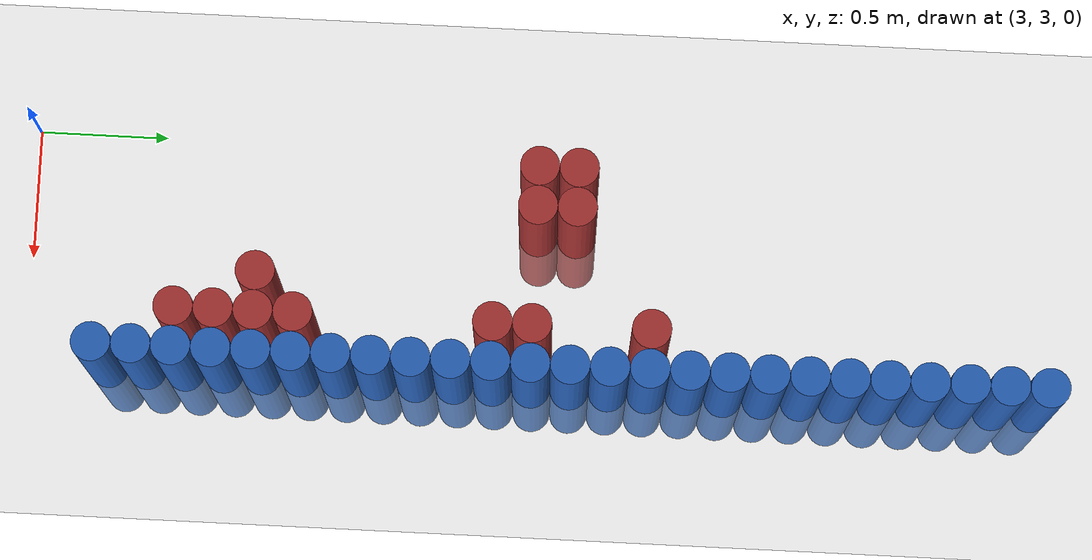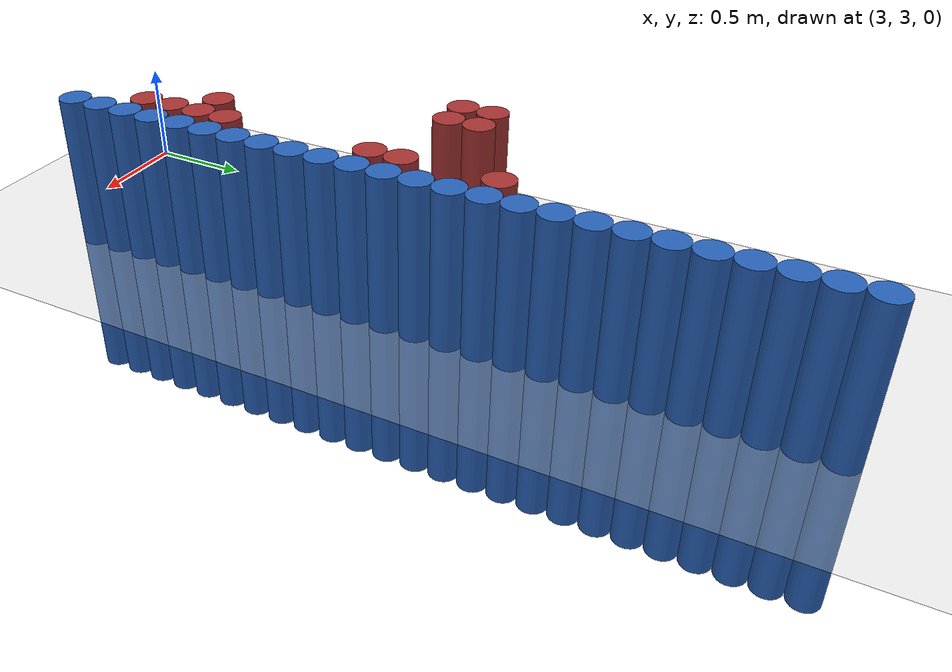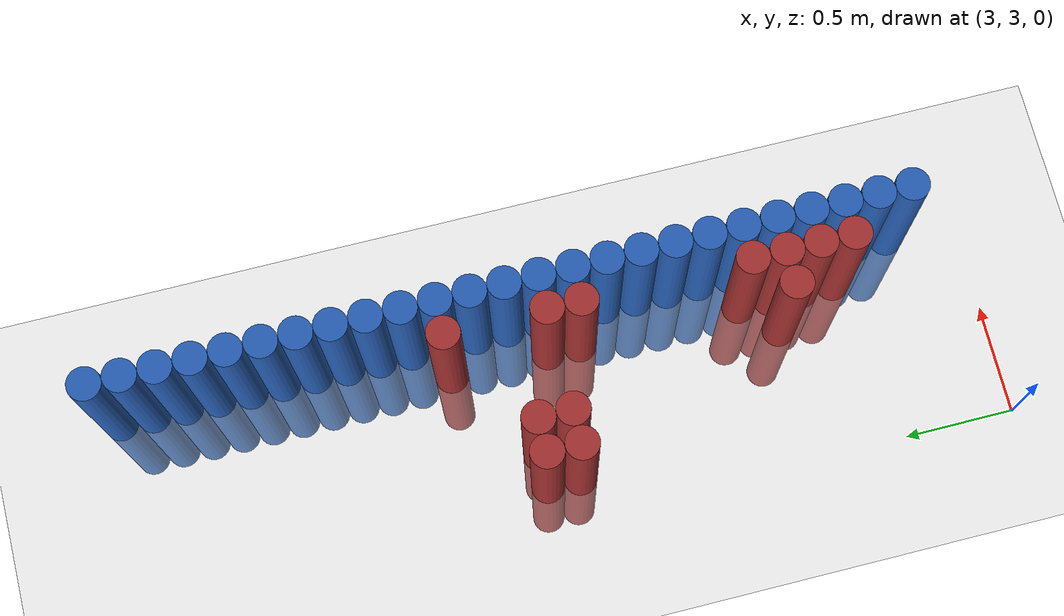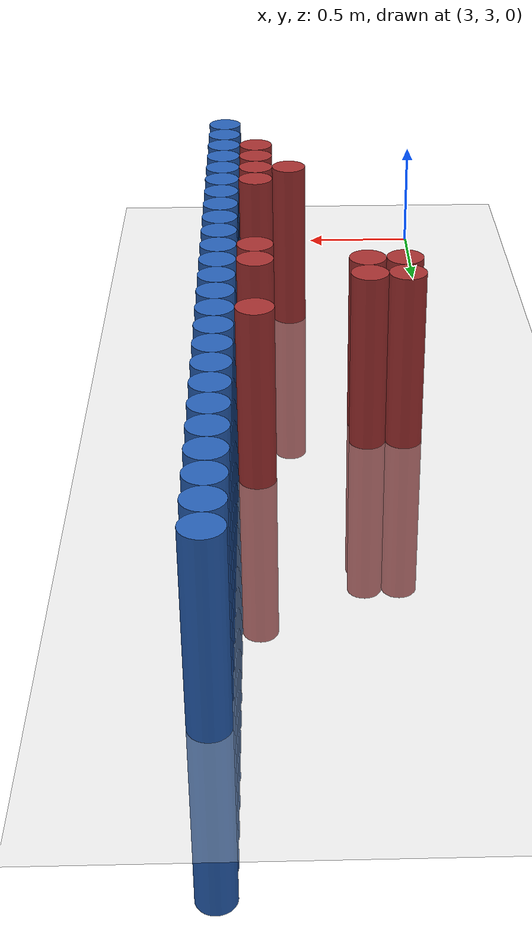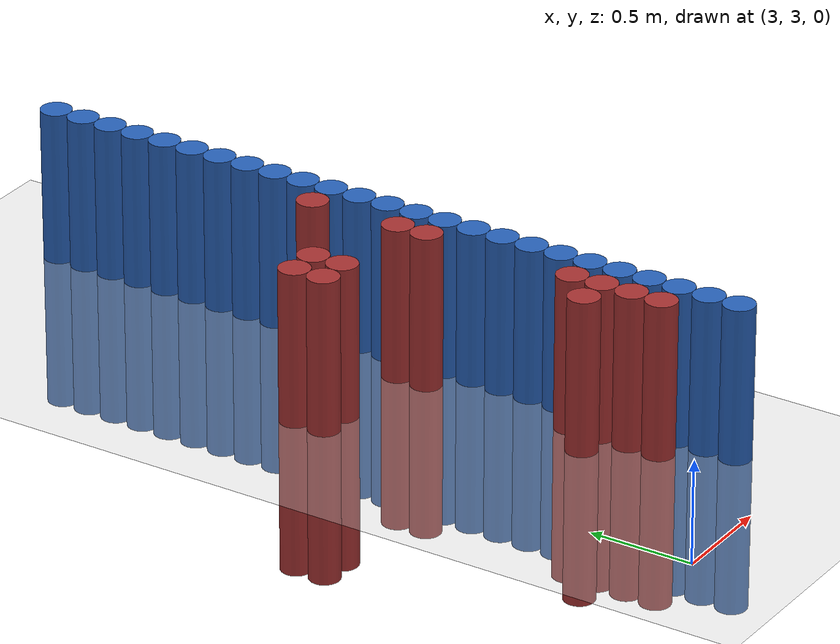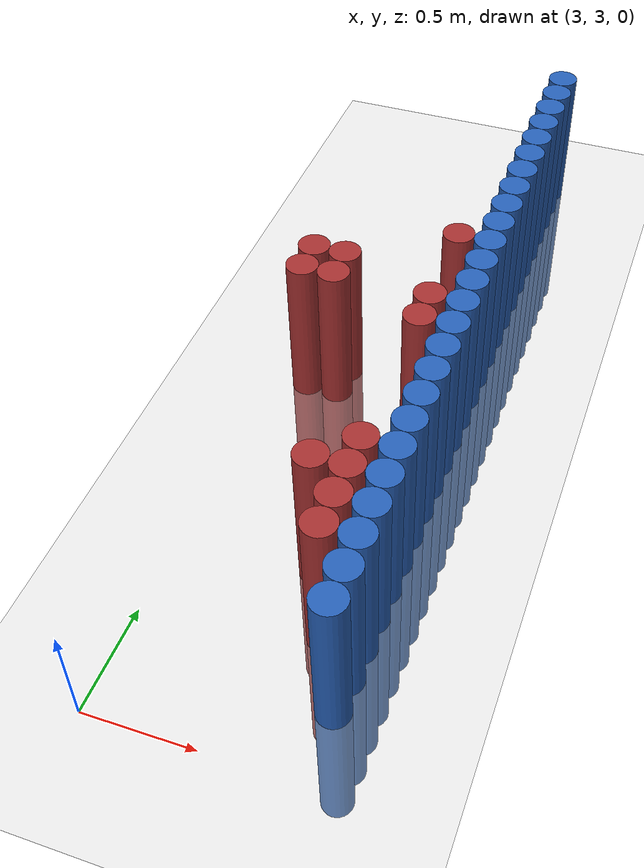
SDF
<sdf version="1.6">
 <world name="default">
  <model name="ground_plane">
   <static>1</static>
   <link name="link">
    <collision name="collision">
     <geometry><plane><normal>0 0 1</normal><size>100 100</size></plane></geometry>
     <surface><friction><ode><mu>100</mu><mu2>50</mu2></ode></friction></surface>
    </collision>
    <visual name="visual">
     <cast_shadows>0</cast_shadows>
     <geometry><plane><normal>0 0 1</normal><size>100 100</size></plane></geometry>
     <material>
      <script><uri>file://media/materials/scripts/gazebo.material</uri><name>Gazebo/Grey</name></script>
     </material>
    </visual>
   </link>
  </model>
  <model name="unit_cylinder_158">
   <static>1</static>
   <pose>3.925000 3.325000 0.000000 0.000000 0.000000 0.000000</pose>
   <link name="link">
    <inertial>
     <mass>1</mass>
     <inertia><ixx>0.145833</ixx><ixy>0</ixy><ixz>0</ixz><iyy>0.145833</iyy><iyz>0</iyz><izz>0.125</izz></inertia>
    </inertial>
    <collision name="collision">
     <geometry><cylinder><radius>0.075000</radius><length>1.5</length></cylinder></geometry>
    </collision>
    <visual name="visual">
     <geometry><cylinder><radius>0.075000</radius><length>1.5</length></cylinder></geometry>
     <material>
      <ambient>0.152000 0.379000 0.720000 1</ambient>
      <diffuse>0.152000 0.379000 0.720000 1</diffuse>
     </material>
     <material>
      <script><name>Gazebo/Grey</name><uri>file://media/materials/scripts/gazebo.material</uri></script>
     </material>
    </visual>
   </link>
  </model>
  <model name="unit_cylinder_160">
   <static>1</static>
   <pose>3.925000 3.475000 0.000000 0.000000 0.000000 0.000000</pose>
   <link name="link">
    <inertial>
     <mass>1</mass>
     <inertia><ixx>0.145833</ixx><ixy>0</ixy><ixz>0</ixz><iyy>0.145833</iyy><iyz>0</iyz><izz>0.125</izz></inertia>
    </inertial>
    <collision name="collision">
     <geometry><cylinder><radius>0.075000</radius><length>1.5</length></cylinder></geometry>
    </collision>
    <visual name="visual">
     <geometry><cylinder><radius>0.075000</radius><length>1.5</length></cylinder></geometry>
     <material>
      <ambient>0.152000 0.379000 0.720000 1</ambient>
      <diffuse>0.152000 0.379000 0.720000 1</diffuse>
     </material>
     <material>
      <script><name>Gazebo/Grey</name><uri>file://media/materials/scripts/gazebo.material</uri></script>
     </material>
    </visual>
   </link>
  </model>
  <model name="unit_cylinder_162">
   <static>1</static>
   <pose>3.925000 3.625000 0.000000 0.000000 0.000000 0.000000</pose>
   <link name="link">
    <inertial>
     <mass>1</mass>
     <inertia><ixx>0.145833</ixx><ixy>0</ixy><ixz>0</ixz><iyy>0.145833</iyy><iyz>0</iyz><izz>0.125</izz></inertia>
    </inertial>
    <collision name="collision">
     <geometry><cylinder><radius>0.075000</radius><length>1.5</length></cylinder></geometry>
    </collision>
    <visual name="visual">
     <geometry><cylinder><radius>0.075000</radius><length>1.5</length></cylinder></geometry>
     <material>
      <ambient>0.152000 0.379000 0.720000 1</ambient>
      <diffuse>0.152000 0.379000 0.720000 1</diffuse>
     </material>
     <material>
      <script><name>Gazebo/Grey</name><uri>file://media/materials/scripts/gazebo.material</uri></script>
     </material>
    </visual>
   </link>
  </model>
  <model name="unit_cylinder_164">
   <static>1</static>
   <pose>3.925000 3.775000 0.000000 0.000000 0.000000 0.000000</pose>
   <link name="link">
    <inertial>
     <mass>1</mass>
     <inertia><ixx>0.145833</ixx><ixy>0</ixy><ixz>0</ixz><iyy>0.145833</iyy><iyz>0</iyz><izz>0.125</izz></inertia>
    </inertial>
    <collision name="collision">
     <geometry><cylinder><radius>0.075000</radius><length>1.5</length></cylinder></geometry>
    </collision>
    <visual name="visual">
     <geometry><cylinder><radius>0.075000</radius><length>1.5</length></cylinder></geometry>
     <material>
      <ambient>0.152000 0.379000 0.720000 1</ambient>
      <diffuse>0.152000 0.379000 0.720000 1</diffuse>
     </material>
     <material>
      <script><name>Gazebo/Grey</name><uri>file://media/materials/scripts/gazebo.material</uri></script>
     </material>
    </visual>
   </link>
  </model>
  <model name="unit_cylinder_166">
   <static>1</static>
   <pose>3.925000 3.925000 0.000000 0.000000 0.000000 0.000000</pose>
   <link name="link">
    <inertial>
     <mass>1</mass>
     <inertia><ixx>0.145833</ixx><ixy>0</ixy><ixz>0</ixz><iyy>0.145833</iyy><iyz>0</iyz><izz>0.125</izz></inertia>
    </inertial>
    <collision name="collision">
     <geometry><cylinder><radius>0.075000</radius><length>1.5</length></cylinder></geometry>
    </collision>
    <visual name="visual">
     <geometry><cylinder><radius>0.075000</radius><length>1.5</length></cylinder></geometry>
     <material>
      <ambient>0.152000 0.379000 0.720000 1</ambient>
      <diffuse>0.152000 0.379000 0.720000 1</diffuse>
     </material>
     <material>
      <script><name>Gazebo/Grey</name><uri>file://media/materials/scripts/gazebo.material</uri></script>
     </material>
    </visual>
   </link>
  </model>
  <model name="unit_cylinder_168">
   <static>1</static>
   <pose>3.925000 4.075000 0.000000 0.000000 0.000000 0.000000</pose>
   <link name="link">
    <inertial>
     <mass>1</mass>
     <inertia><ixx>0.145833</ixx><ixy>0</ixy><ixz>0</ixz><iyy>0.145833</iyy><iyz>0</iyz><izz>0.125</izz></inertia>
    </inertial>
    <collision name="collision">
     <geometry><cylinder><radius>0.075000</radius><length>1.5</length></cylinder></geometry>
    </collision>
    <visual name="visual">
     <geometry><cylinder><radius>0.075000</radius><length>1.5</length></cylinder></geometry>
     <material>
      <ambient>0.152000 0.379000 0.720000 1</ambient>
      <diffuse>0.152000 0.379000 0.720000 1</diffuse>
     </material>
     <material>
      <script><name>Gazebo/Grey</name><uri>file://media/materials/scripts/gazebo.material</uri></script>
     </material>
    </visual>
   </link>
  </model>
  <model name="unit_cylinder_170">
   <static>1</static>
   <pose>3.925000 4.225000 0.000000 0.000000 0.000000 0.000000</pose>
   <link name="link">
    <inertial>
     <mass>1</mass>
     <inertia><ixx>0.145833</ixx><ixy>0</ixy><ixz>0</ixz><iyy>0.145833</iyy><iyz>0</iyz><izz>0.125</izz></inertia>
    </inertial>
    <collision name="collision">
     <geometry><cylinder><radius>0.075000</radius><length>1.5</length></cylinder></geometry>
    </collision>
    <visual name="visual">
     <geometry><cylinder><radius>0.075000</radius><length>1.5</length></cylinder></geometry>
     <material>
      <ambient>0.152000 0.379000 0.720000 1</ambient>
      <diffuse>0.152000 0.379000 0.720000 1</diffuse>
     </material>
     <material>
      <script><name>Gazebo/Grey</name><uri>file://media/materials/scripts/gazebo.material</uri></script>
     </material>
    </visual>
   </link>
  </model>
  <model name="unit_cylinder_172">
   <static>1</static>
   <pose>3.925000 4.375000 0.000000 0.000000 0.000000 0.000000</pose>
   <link name="link">
    <inertial>
     <mass>1</mass>
     <inertia><ixx>0.145833</ixx><ixy>0</ixy><ixz>0</ixz><iyy>0.145833</iyy><iyz>0</iyz><izz>0.125</izz></inertia>
    </inertial>
    <collision name="collision">
     <geometry><cylinder><radius>0.075000</radius><length>1.5</length></cylinder></geometry>
    </collision>
    <visual name="visual">
     <geometry><cylinder><radius>0.075000</radius><length>1.5</length></cylinder></geometry>
     <material>
      <ambient>0.152000 0.379000 0.720000 1</ambient>
      <diffuse>0.152000 0.379000 0.720000 1</diffuse>
     </material>
     <material>
      <script><name>Gazebo/Grey</name><uri>file://media/materials/scripts/gazebo.material</uri></script>
     </material>
    </visual>
   </link>
  </model>
  <model name="unit_cylinder_174">
   <static>1</static>
   <pose>3.925000 4.525000 0.000000 0.000000 0.000000 0.000000</pose>
   <link name="link">
    <inertial>
     <mass>1</mass>
     <inertia><ixx>0.145833</ixx><ixy>0</ixy><ixz>0</ixz><iyy>0.145833</iyy><iyz>0</iyz><izz>0.125</izz></inertia>
    </inertial>
    <collision name="collision">
     <geometry><cylinder><radius>0.075000</radius><length>1.5</length></cylinder></geometry>
    </collision>
    <visual name="visual">
     <geometry><cylinder><radius>0.075000</radius><length>1.5</length></cylinder></geometry>
     <material>
      <ambient>0.152000 0.379000 0.720000 1</ambient>
      <diffuse>0.152000 0.379000 0.720000 1</diffuse>
     </material>
     <material>
      <script><name>Gazebo/Grey</name><uri>file://media/materials/scripts/gazebo.material</uri></script>
     </material>
    </visual>
   </link>
  </model>
  <model name="unit_cylinder_176">
   <static>1</static>
   <pose>3.925000 4.675000 0.000000 0.000000 0.000000 0.000000</pose>
   <link name="link">
    <inertial>
     <mass>1</mass>
     <inertia><ixx>0.145833</ixx><ixy>0</ixy><ixz>0</ixz><iyy>0.145833</iyy><iyz>0</iyz><izz>0.125</izz></inertia>
    </inertial>
    <collision name="collision">
     <geometry><cylinder><radius>0.075000</radius><length>1.5</length></cylinder></geometry>
    </collision>
    <visual name="visual">
     <geometry><cylinder><radius>0.075000</radius><length>1.5</length></cylinder></geometry>
     <material>
      <ambient>0.152000 0.379000 0.720000 1</ambient>
      <diffuse>0.152000 0.379000 0.720000 1</diffuse>
     </material>
     <material>
      <script><name>Gazebo/Grey</name><uri>file://media/materials/scripts/gazebo.material</uri></script>
     </material>
    </visual>
   </link>
  </model>
  <model name="unit_cylinder_178">
   <static>1</static>
   <pose>3.925000 4.825000 0.000000 0.000000 0.000000 0.000000</pose>
   <link name="link">
    <inertial>
     <mass>1</mass>
     <inertia><ixx>0.145833</ixx><ixy>0</ixy><ixz>0</ixz><iyy>0.145833</iyy><iyz>0</iyz><izz>0.125</izz></inertia>
    </inertial>
    <collision name="collision">
     <geometry><cylinder><radius>0.075000</radius><length>1.5</length></cylinder></geometry>
    </collision>
    <visual name="visual">
     <geometry><cylinder><radius>0.075000</radius><length>1.5</length></cylinder></geometry>
     <material>
      <ambient>0.152000 0.379000 0.720000 1</ambient>
      <diffuse>0.152000 0.379000 0.720000 1</diffuse>
     </material>
     <material>
      <script><name>Gazebo/Grey</name><uri>file://media/materials/scripts/gazebo.material</uri></script>
     </material>
    </visual>
   </link>
  </model>
  <model name="unit_cylinder_180">
   <static>1</static>
   <pose>3.925000 4.975000 0.000000 0.000000 0.000000 0.000000</pose>
   <link name="link">
    <inertial>
     <mass>1</mass>
     <inertia><ixx>0.145833</ixx><ixy>0</ixy><ixz>0</ixz><iyy>0.145833</iyy><iyz>0</iyz><izz>0.125</izz></inertia>
    </inertial>
    <collision name="collision">
     <geometry><cylinder><radius>0.075000</radius><length>1.5</length></cylinder></geometry>
    </collision>
    <visual name="visual">
     <geometry><cylinder><radius>0.075000</radius><length>1.5</length></cylinder></geometry>
     <material>
      <ambient>0.152000 0.379000 0.720000 1</ambient>
      <diffuse>0.152000 0.379000 0.720000 1</diffuse>
     </material>
     <material>
      <script><name>Gazebo/Grey</name><uri>file://media/materials/scripts/gazebo.material</uri></script>
     </material>
    </visual>
   </link>
  </model>
  <model name="unit_cylinder_182">
   <static>1</static>
   <pose>3.925000 5.125000 0.000000 0.000000 0.000000 0.000000</pose>
   <link name="link">
    <inertial>
     <mass>1</mass>
     <inertia><ixx>0.145833</ixx><ixy>0</ixy><ixz>0</ixz><iyy>0.145833</iyy><iyz>0</iyz><izz>0.125</izz></inertia>
    </inertial>
    <collision name="collision">
     <geometry><cylinder><radius>0.075000</radius><length>1.5</length></cylinder></geometry>
    </collision>
    <visual name="visual">
     <geometry><cylinder><radius>0.075000</radius><length>1.5</length></cylinder></geometry>
     <material>
      <ambient>0.152000 0.379000 0.720000 1</ambient>
      <diffuse>0.152000 0.379000 0.720000 1</diffuse>
     </material>
     <material>
      <script><name>Gazebo/Grey</name><uri>file://media/materials/scripts/gazebo.material</uri></script>
     </material>
    </visual>
   </link>
  </model>
  <model name="unit_cylinder_184">
   <static>1</static>
   <pose>3.925000 5.275000 0.000000 0.000000 0.000000 0.000000</pose>
   <link name="link">
    <inertial>
     <mass>1</mass>
     <inertia><ixx>0.145833</ixx><ixy>0</ixy><ixz>0</ixz><iyy>0.145833</iyy><iyz>0</iyz><izz>0.125</izz></inertia>
    </inertial>
    <collision name="collision">
     <geometry><cylinder><radius>0.075000</radius><length>1.5</length></cylinder></geometry>
    </collision>
    <visual name="visual">
     <geometry><cylinder><radius>0.075000</radius><length>1.5</length></cylinder></geometry>
     <material>
      <ambient>0.152000 0.379000 0.720000 1</ambient>
      <diffuse>0.152000 0.379000 0.720000 1</diffuse>
     </material>
     <material>
      <script><name>Gazebo/Grey</name><uri>file://media/materials/scripts/gazebo.material</uri></script>
     </material>
    </visual>
   </link>
  </model>
  <model name="unit_cylinder_186">
   <static>1</static>
   <pose>3.925000 5.425000 0.000000 0.000000 0.000000 0.000000</pose>
   <link name="link">
    <inertial>
     <mass>1</mass>
     <inertia><ixx>0.145833</ixx><ixy>0</ixy><ixz>0</ixz><iyy>0.145833</iyy><iyz>0</iyz><izz>0.125</izz></inertia>
    </inertial>
    <collision name="collision">
     <geometry><cylinder><radius>0.075000</radius><length>1.5</length></cylinder></geometry>
    </collision>
    <visual name="visual">
     <geometry><cylinder><radius>0.075000</radius><length>1.5</length></cylinder></geometry>
     <material>
      <ambient>0.152000 0.379000 0.720000 1</ambient>
      <diffuse>0.152000 0.379000 0.720000 1</diffuse>
     </material>
     <material>
      <script><name>Gazebo/Grey</name><uri>file://media/materials/scripts/gazebo.material</uri></script>
     </material>
    </visual>
   </link>
  </model>
  <model name="unit_cylinder_188">
   <static>1</static>
   <pose>3.925000 5.575000 0.000000 0.000000 0.000000 0.000000</pose>
   <link name="link">
    <inertial>
     <mass>1</mass>
     <inertia><ixx>0.145833</ixx><ixy>0</ixy><ixz>0</ixz><iyy>0.145833</iyy><iyz>0</iyz><izz>0.125</izz></inertia>
    </inertial>
    <collision name="collision">
     <geometry><cylinder><radius>0.075000</radius><length>1.5</length></cylinder></geometry>
    </collision>
    <visual name="visual">
     <geometry><cylinder><radius>0.075000</radius><length>1.5</length></cylinder></geometry>
     <material>
      <ambient>0.152000 0.379000 0.720000 1</ambient>
      <diffuse>0.152000 0.379000 0.720000 1</diffuse>
     </material>
     <material>
      <script><name>Gazebo/Grey</name><uri>file://media/materials/scripts/gazebo.material</uri></script>
     </material>
    </visual>
   </link>
  </model>
  <model name="unit_cylinder_190">
   <static>1</static>
   <pose>3.925000 5.725000 0.000000 0.000000 0.000000 0.000000</pose>
   <link name="link">
    <inertial>
     <mass>1</mass>
     <inertia><ixx>0.145833</ixx><ixy>0</ixy><ixz>0</ixz><iyy>0.145833</iyy><iyz>0</iyz><izz>0.125</izz></inertia>
    </inertial>
    <collision name="collision">
     <geometry><cylinder><radius>0.075000</radius><length>1.5</length></cylinder></geometry>
    </collision>
    <visual name="visual">
     <geometry><cylinder><radius>0.075000</radius><length>1.5</length></cylinder></geometry>
     <material>
      <ambient>0.152000 0.379000 0.720000 1</ambient>
      <diffuse>0.152000 0.379000 0.720000 1</diffuse>
     </material>
     <material>
      <script><name>Gazebo/Grey</name><uri>file://media/materials/scripts/gazebo.material</uri></script>
     </material>
    </visual>
   </link>
  </model>
  <model name="unit_cylinder_192">
   <static>1</static>
   <pose>3.925000 5.875000 0.000000 0.000000 0.000000 0.000000</pose>
   <link name="link">
    <inertial>
     <mass>1</mass>
     <inertia><ixx>0.145833</ixx><ixy>0</ixy><ixz>0</ixz><iyy>0.145833</iyy><iyz>0</iyz><izz>0.125</izz></inertia>
    </inertial>
    <collision name="collision">
     <geometry><cylinder><radius>0.075000</radius><length>1.5</length></cylinder></geometry>
    </collision>
    <visual name="visual">
     <geometry><cylinder><radius>0.075000</radius><length>1.5</length></cylinder></geometry>
     <material>
      <ambient>0.152000 0.379000 0.720000 1</ambient>
      <diffuse>0.152000 0.379000 0.720000 1</diffuse>
     </material>
     <material>
      <script><name>Gazebo/Grey</name><uri>file://media/materials/scripts/gazebo.material</uri></script>
     </material>
    </visual>
   </link>
  </model>
  <model name="unit_cylinder_194">
   <static>1</static>
   <pose>3.925000 6.025000 0.000000 0.000000 0.000000 0.000000</pose>
   <link name="link">
    <inertial>
     <mass>1</mass>
     <inertia><ixx>0.145833</ixx><ixy>0</ixy><ixz>0</ixz><iyy>0.145833</iyy><iyz>0</iyz><izz>0.125</izz></inertia>
    </inertial>
    <collision name="collision">
     <geometry><cylinder><radius>0.075000</radius><length>1.5</length></cylinder></geometry>
    </collision>
    <visual name="visual">
     <geometry><cylinder><radius>0.075000</radius><length>1.5</length></cylinder></geometry>
     <material>
      <ambient>0.152000 0.379000 0.720000 1</ambient>
      <diffuse>0.152000 0.379000 0.720000 1</diffuse>
     </material>
     <material>
      <script><name>Gazebo/Grey</name><uri>file://media/materials/scripts/gazebo.material</uri></script>
     </material>
    </visual>
   </link>
  </model>
  <model name="unit_cylinder_196">
   <static>1</static>
   <pose>3.925000 6.175000 0.000000 0.000000 0.000000 0.000000</pose>
   <link name="link">
    <inertial>
     <mass>1</mass>
     <inertia><ixx>0.145833</ixx><ixy>0</ixy><ixz>0</ixz><iyy>0.145833</iyy><iyz>0</iyz><izz>0.125</izz></inertia>
    </inertial>
    <collision name="collision">
     <geometry><cylinder><radius>0.075000</radius><length>1.5</length></cylinder></geometry>
    </collision>
    <visual name="visual">
     <geometry><cylinder><radius>0.075000</radius><length>1.5</length></cylinder></geometry>
     <material>
      <ambient>0.152000 0.379000 0.720000 1</ambient>
      <diffuse>0.152000 0.379000 0.720000 1</diffuse>
     </material>
     <material>
      <script><name>Gazebo/Grey</name><uri>file://media/materials/scripts/gazebo.material</uri></script>
     </material>
    </visual>
   </link>
  </model>
  <model name="unit_cylinder_198">
   <static>1</static>
   <pose>3.925000 6.325000 0.000000 0.000000 0.000000 0.000000</pose>
   <link name="link">
    <inertial>
     <mass>1</mass>
     <inertia><ixx>0.145833</ixx><ixy>0</ixy><ixz>0</ixz><iyy>0.145833</iyy><iyz>0</iyz><izz>0.125</izz></inertia>
    </inertial>
    <collision name="collision">
     <geometry><cylinder><radius>0.075000</radius><length>1.5</length></cylinder></geometry>
    </collision>
    <visual name="visual">
     <geometry><cylinder><radius>0.075000</radius><length>1.5</length></cylinder></geometry>
     <material>
      <ambient>0.152000 0.379000 0.720000 1</ambient>
      <diffuse>0.152000 0.379000 0.720000 1</diffuse>
     </material>
     <material>
      <script><name>Gazebo/Grey</name><uri>file://media/materials/scripts/gazebo.material</uri></script>
     </material>
    </visual>
   </link>
  </model>
  <model name="unit_cylinder_200">
   <static>1</static>
   <pose>3.925000 6.475000 0.000000 0.000000 0.000000 0.000000</pose>
   <link name="link">
    <inertial>
     <mass>1</mass>
     <inertia><ixx>0.145833</ixx><ixy>0</ixy><ixz>0</ixz><iyy>0.145833</iyy><iyz>0</iyz><izz>0.125</izz></inertia>
    </inertial>
    <collision name="collision">
     <geometry><cylinder><radius>0.075000</radius><length>1.5</length></cylinder></geometry>
    </collision>
    <visual name="visual">
     <geometry><cylinder><radius>0.075000</radius><length>1.5</length></cylinder></geometry>
     <material>
      <ambient>0.152000 0.379000 0.720000 1</ambient>
      <diffuse>0.152000 0.379000 0.720000 1</diffuse>
     </material>
     <material>
      <script><name>Gazebo/Grey</name><uri>file://media/materials/scripts/gazebo.material</uri></script>
     </material>
    </visual>
   </link>
  </model>
  <model name="unit_cylinder_202">
   <static>1</static>
   <pose>3.925000 6.625000 0.000000 0.000000 0.000000 0.000000</pose>
   <link name="link">
    <inertial>
     <mass>1</mass>
     <inertia><ixx>0.145833</ixx><ixy>0</ixy><ixz>0</ixz><iyy>0.145833</iyy><iyz>0</iyz><izz>0.125</izz></inertia>
    </inertial>
    <collision name="collision">
     <geometry><cylinder><radius>0.075000</radius><length>1.5</length></cylinder></geometry>
    </collision>
    <visual name="visual">
     <geometry><cylinder><radius>0.075000</radius><length>1.5</length></cylinder></geometry>
     <material>
      <ambient>0.152000 0.379000 0.720000 1</ambient>
      <diffuse>0.152000 0.379000 0.720000 1</diffuse>
     </material>
     <material>
      <script><name>Gazebo/Grey</name><uri>file://media/materials/scripts/gazebo.material</uri></script>
     </material>
    </visual>
   </link>
  </model>
  <model name="unit_cylinder_204">
   <static>1</static>
   <pose>3.925000 6.775000 0.000000 0.000000 0.000000 0.000000</pose>
   <link name="link">
    <inertial>
     <mass>1</mass>
     <inertia><ixx>0.145833</ixx><ixy>0</ixy><ixz>0</ixz><iyy>0.145833</iyy><iyz>0</iyz><izz>0.125</izz></inertia>
    </inertial>
    <collision name="collision">
     <geometry><cylinder><radius>0.075000</radius><length>1.5</length></cylinder></geometry>
    </collision>
    <visual name="visual">
     <geometry><cylinder><radius>0.075000</radius><length>1.5</length></cylinder></geometry>
     <material>
      <ambient>0.152000 0.379000 0.720000 1</ambient>
      <diffuse>0.152000 0.379000 0.720000 1</diffuse>
     </material>
     <material>
      <script><name>Gazebo/Grey</name><uri>file://media/materials/scripts/gazebo.material</uri></script>
     </material>
    </visual>
   </link>
  </model>
  <model name="unit_cylinder_206">
   <static>1</static>
   <pose>3.925000 6.925000 0.000000 0.000000 0.000000 0.000000</pose>
   <link name="link">
    <inertial>
     <mass>1</mass>
     <inertia><ixx>0.145833</ixx><ixy>0</ixy><ixz>0</ixz><iyy>0.145833</iyy><iyz>0</iyz><izz>0.125</izz></inertia>
    </inertial>
    <collision name="collision">
     <geometry><cylinder><radius>0.075000</radius><length>1.5</length></cylinder></geometry>
    </collision>
    <visual name="visual">
     <geometry><cylinder><radius>0.075000</radius><length>1.5</length></cylinder></geometry>
     <material>
      <ambient>0.152000 0.379000 0.720000 1</ambient>
      <diffuse>0.152000 0.379000 0.720000 1</diffuse>
     </material>
     <material>
      <script><name>Gazebo/Grey</name><uri>file://media/materials/scripts/gazebo.material</uri></script>
     </material>
    </visual>
   </link>
  </model>
  <model name="unit_cylinder_573">
   <static>1</static>
   <pose>3.175000 4.975000 0.000000 0.000000 0.000000 0.000000</pose>
   <link name="link">
    <inertial>
     <mass>1</mass>
     <inertia><ixx>0.145833</ixx><ixy>0</ixy><ixz>0</ixz><iyy>0.145833</iyy><iyz>0</iyz><izz>0.125</izz></inertia>
    </inertial>
    <collision name="collision">
     <geometry><cylinder><radius>0.075000</radius><length>1.5</length></cylinder></geometry>
    </collision>
    <visual name="visual">
     <geometry><cylinder><radius>0.075000</radius><length>1.5</length></cylinder></geometry>
     <material>
      <ambient>0.648000 0.192000 0.192000 1</ambient>
      <diffuse>0.648000 0.192000 0.192000 1</diffuse>
     </material>
     <material>
      <script><name>Gazebo/Grey</name><uri>file://media/materials/scripts/gazebo.material</uri></script>
     </material>
    </visual>
   </link>
  </model>
  <model name="unit_cylinder_574">
   <static>1</static>
   <pose>3.175000 5.125000 0.000000 0.000000 0.000000 0.000000</pose>
   <link name="link">
    <inertial>
     <mass>1</mass>
     <inertia><ixx>0.145833</ixx><ixy>0</ixy><ixz>0</ixz><iyy>0.145833</iyy><iyz>0</iyz><izz>0.125</izz></inertia>
    </inertial>
    <collision name="collision">
     <geometry><cylinder><radius>0.075000</radius><length>1.5</length></cylinder></geometry>
    </collision>
    <visual name="visual">
     <geometry><cylinder><radius>0.075000</radius><length>1.5</length></cylinder></geometry>
     <material>
      <ambient>0.648000 0.192000 0.192000 1</ambient>
      <diffuse>0.648000 0.192000 0.192000 1</diffuse>
     </material>
     <material>
      <script><name>Gazebo/Grey</name><uri>file://media/materials/scripts/gazebo.material</uri></script>
     </material>
    </visual>
   </link>
  </model>
  <model name="unit_cylinder_585">
   <static>1</static>
   <pose>3.325000 4.975000 0.000000 0.000000 0.000000 0.000000</pose>
   <link name="link">
    <inertial>
     <mass>1</mass>
     <inertia><ixx>0.145833</ixx><ixy>0</ixy><ixz>0</ixz><iyy>0.145833</iyy><iyz>0</iyz><izz>0.125</izz></inertia>
    </inertial>
    <collision name="collision">
     <geometry><cylinder><radius>0.075000</radius><length>1.5</length></cylinder></geometry>
    </collision>
    <visual name="visual">
     <geometry><cylinder><radius>0.075000</radius><length>1.5</length></cylinder></geometry>
     <material>
      <ambient>0.648000 0.192000 0.192000 1</ambient>
      <diffuse>0.648000 0.192000 0.192000 1</diffuse>
     </material>
     <material>
      <script><name>Gazebo/Grey</name><uri>file://media/materials/scripts/gazebo.material</uri></script>
     </material>
    </visual>
   </link>
  </model>
  <model name="unit_cylinder_586">
   <static>1</static>
   <pose>3.325000 5.125000 0.000000 0.000000 0.000000 0.000000</pose>
   <link name="link">
    <inertial>
     <mass>1</mass>
     <inertia><ixx>0.145833</ixx><ixy>0</ixy><ixz>0</ixz><iyy>0.145833</iyy><iyz>0</iyz><izz>0.125</izz></inertia>
    </inertial>
    <collision name="collision">
     <geometry><cylinder><radius>0.075000</radius><length>1.5</length></cylinder></geometry>
    </collision>
    <visual name="visual">
     <geometry><cylinder><radius>0.075000</radius><length>1.5</length></cylinder></geometry>
     <material>
      <ambient>0.648000 0.192000 0.192000 1</ambient>
      <diffuse>0.648000 0.192000 0.192000 1</diffuse>
     </material>
     <material>
      <script><name>Gazebo/Grey</name><uri>file://media/materials/scripts/gazebo.material</uri></script>
     </material>
    </visual>
   </link>
  </model>
  <model name="unit_cylinder_599">
   <static>1</static>
   <pose>3.625000 3.925000 0.000000 0.000000 0.000000 0.000000</pose>
   <link name="link">
    <inertial>
     <mass>1</mass>
     <inertia><ixx>0.145833</ixx><ixy>0</ixy><ixz>0</ixz><iyy>0.145833</iyy><iyz>0</iyz><izz>0.125</izz></inertia>
    </inertial>
    <collision name="collision">
     <geometry><cylinder><radius>0.075000</radius><length>1.5</length></cylinder></geometry>
    </collision>
    <visual name="visual">
     <geometry><cylinder><radius>0.075000</radius><length>1.5</length></cylinder></geometry>
     <material>
      <ambient>0.648000 0.192000 0.192000 1</ambient>
      <diffuse>0.648000 0.192000 0.192000 1</diffuse>
     </material>
     <material>
      <script><name>Gazebo/Grey</name><uri>file://media/materials/scripts/gazebo.material</uri></script>
     </material>
    </visual>
   </link>
  </model>
  <model name="unit_cylinder_615">
   <static>1</static>
   <pose>3.775000 3.625000 0.000000 0.000000 0.000000 0.000000</pose>
   <link name="link">
    <inertial>
     <mass>1</mass>
     <inertia><ixx>0.145833</ixx><ixy>0</ixy><ixz>0</ixz><iyy>0.145833</iyy><iyz>0</iyz><izz>0.125</izz></inertia>
    </inertial>
    <collision name="collision">
     <geometry><cylinder><radius>0.075000</radius><length>1.5</length></cylinder></geometry>
    </collision>
    <visual name="visual">
     <geometry><cylinder><radius>0.075000</radius><length>1.5</length></cylinder></geometry>
     <material>
      <ambient>0.648000 0.192000 0.192000 1</ambient>
      <diffuse>0.648000 0.192000 0.192000 1</diffuse>
     </material>
     <material>
      <script><name>Gazebo/Grey</name><uri>file://media/materials/scripts/gazebo.material</uri></script>
     </material>
    </visual>
   </link>
  </model>
  <model name="unit_cylinder_616">
   <static>1</static>
   <pose>3.775000 3.775000 0.000000 0.000000 0.000000 0.000000</pose>
   <link name="link">
    <inertial>
     <mass>1</mass>
     <inertia><ixx>0.145833</ixx><ixy>0</ixy><ixz>0</ixz><iyy>0.145833</iyy><iyz>0</iyz><izz>0.125</izz></inertia>
    </inertial>
    <collision name="collision">
     <geometry><cylinder><radius>0.075000</radius><length>1.5</length></cylinder></geometry>
    </collision>
    <visual name="visual">
     <geometry><cylinder><radius>0.075000</radius><length>1.5</length></cylinder></geometry>
     <material>
      <ambient>0.648000 0.192000 0.192000 1</ambient>
      <diffuse>0.648000 0.192000 0.192000 1</diffuse>
     </material>
     <material>
      <script><name>Gazebo/Grey</name><uri>file://media/materials/scripts/gazebo.material</uri></script>
     </material>
    </visual>
   </link>
  </model>
  <model name="unit_cylinder_617">
   <static>1</static>
   <pose>3.775000 3.925000 0.000000 0.000000 0.000000 0.000000</pose>
   <link name="link">
    <inertial>
     <mass>1</mass>
     <inertia><ixx>0.145833</ixx><ixy>0</ixy><ixz>0</ixz><iyy>0.145833</iyy><iyz>0</iyz><izz>0.125</izz></inertia>
    </inertial>
    <collision name="collision">
     <geometry><cylinder><radius>0.075000</radius><length>1.5</length></cylinder></geometry>
    </collision>
    <visual name="visual">
     <geometry><cylinder><radius>0.075000</radius><length>1.5</length></cylinder></geometry>
     <material>
      <ambient>0.648000 0.192000 0.192000 1</ambient>
      <diffuse>0.648000 0.192000 0.192000 1</diffuse>
     </material>
     <material>
      <script><name>Gazebo/Grey</name><uri>file://media/materials/scripts/gazebo.material</uri></script>
     </material>
    </visual>
   </link>
  </model>
  <model name="unit_cylinder_618">
   <static>1</static>
   <pose>3.775000 4.075000 0.000000 0.000000 0.000000 0.000000</pose>
   <link name="link">
    <inertial>
     <mass>1</mass>
     <inertia><ixx>0.145833</ixx><ixy>0</ixy><ixz>0</ixz><iyy>0.145833</iyy><iyz>0</iyz><izz>0.125</izz></inertia>
    </inertial>
    <collision name="collision">
     <geometry><cylinder><radius>0.075000</radius><length>1.5</length></cylinder></geometry>
    </collision>
    <visual name="visual">
     <geometry><cylinder><radius>0.075000</radius><length>1.5</length></cylinder></geometry>
     <material>
      <ambient>0.648000 0.192000 0.192000 1</ambient>
      <diffuse>0.648000 0.192000 0.192000 1</diffuse>
     </material>
     <material>
      <script><name>Gazebo/Grey</name><uri>file://media/materials/scripts/gazebo.material</uri></script>
     </material>
    </visual>
   </link>
  </model>
  <model name="unit_cylinder_619">
   <static>1</static>
   <pose>3.775000 4.825000 0.000000 0.000000 0.000000 0.000000</pose>
   <link name="link">
    <inertial>
     <mass>1</mass>
     <inertia><ixx>0.145833</ixx><ixy>0</ixy><ixz>0</ixz><iyy>0.145833</iyy><iyz>0</iyz><izz>0.125</izz></inertia>
    </inertial>
    <collision name="collision">
     <geometry><cylinder><radius>0.075000</radius><length>1.5</length></cylinder></geometry>
    </collision>
    <visual name="visual">
     <geometry><cylinder><radius>0.075000</radius><length>1.5</length></cylinder></geometry>
     <material>
      <ambient>0.648000 0.192000 0.192000 1</ambient>
      <diffuse>0.648000 0.192000 0.192000 1</diffuse>
     </material>
     <material>
      <script><name>Gazebo/Grey</name><uri>file://media/materials/scripts/gazebo.material</uri></script>
     </material>
    </visual>
   </link>
  </model>
  <model name="unit_cylinder_620">
   <static>1</static>
   <pose>3.775000 4.975000 0.000000 0.000000 0.000000 0.000000</pose>
   <link name="link">
    <inertial>
     <mass>1</mass>
     <inertia><ixx>0.145833</ixx><ixy>0</ixy><ixz>0</ixz><iyy>0.145833</iyy><iyz>0</iyz><izz>0.125</izz></inertia>
    </inertial>
    <collision name="collision">
     <geometry><cylinder><radius>0.075000</radius><length>1.5</length></cylinder></geometry>
    </collision>
    <visual name="visual">
     <geometry><cylinder><radius>0.075000</radius><length>1.5</length></cylinder></geometry>
     <material>
      <ambient>0.648000 0.192000 0.192000 1</ambient>
      <diffuse>0.648000 0.192000 0.192000 1</diffuse>
     </material>
     <material>
      <script><name>Gazebo/Grey</name><uri>file://media/materials/scripts/gazebo.material</uri></script>
     </material>
    </visual>
   </link>
  </model>
  <model name="unit_cylinder_621">
   <static>1</static>
   <pose>3.775000 5.425000 0.000000 0.000000 0.000000 0.000000</pose>
   <link name="link">
    <inertial>
     <mass>1</mass>
     <inertia><ixx>0.145833</ixx><ixy>0</ixy><ixz>0</ixz><iyy>0.145833</iyy><iyz>0</iyz><izz>0.125</izz></inertia>
    </inertial>
    <collision name="collision">
     <geometry><cylinder><radius>0.075000</radius><length>1.5</length></cylinder></geometry>
    </collision>
    <visual name="visual">
     <geometry><cylinder><radius>0.075000</radius><length>1.5</length></cylinder></geometry>
     <material>
      <ambient>0.648000 0.192000 0.192000 1</ambient>
      <diffuse>0.648000 0.192000 0.192000 1</diffuse>
     </material>
     <material>
      <script><name>Gazebo/Grey</name><uri>file://media/materials/scripts/gazebo.material</uri></script>
     </material>
    </visual>
   </link>
  </model>
  <model name="unit_cylinder_657">
   <static>1</static>
   <pose>3.925000 3.325000 0.000000 0.000000 0.000000 0.000000</pose>
   <link name="link">
    <inertial>
     <mass>1</mass>
     <inertia><ixx>0.145833</ixx><ixy>0</ixy><ixz>0</ixz><iyy>0.145833</iyy><iyz>0</iyz><izz>0.125</izz></inertia>
    </inertial>
    <collision name="collision">
     <geometry><cylinder><radius>0.075000</radius><length>1.5</length></cylinder></geometry>
    </collision>
    <visual name="visual">
     <geometry><cylinder><radius>0.075000</radius><length>1.5</length></cylinder></geometry>
     <material>
      <ambient>0.152000 0.379000 0.720000 1</ambient>
      <diffuse>0.152000 0.379000 0.720000 1</diffuse>
     </material>
     <material>
      <script><name>Gazebo/Grey</name><uri>file://media/materials/scripts/gazebo.material</uri></script>
     </material>
    </visual>
   </link>
  </model>
  <model name="unit_cylinder_658">
   <static>1</static>
   <pose>3.925000 3.475000 0.000000 0.000000 0.000000 0.000000</pose>
   <link name="link">
    <inertial>
     <mass>1</mass>
     <inertia><ixx>0.145833</ixx><ixy>0</ixy><ixz>0</ixz><iyy>0.145833</iyy><iyz>0</iyz><izz>0.125</izz></inertia>
    </inertial>
    <collision name="collision">
     <geometry><cylinder><radius>0.075000</radius><length>1.5</length></cylinder></geometry>
    </collision>
    <visual name="visual">
     <geometry><cylinder><radius>0.075000</radius><length>1.5</length></cylinder></geometry>
     <material>
      <ambient>0.152000 0.379000 0.720000 1</ambient>
      <diffuse>0.152000 0.379000 0.720000 1</diffuse>
     </material>
     <material>
      <script><name>Gazebo/Grey</name><uri>file://media/materials/scripts/gazebo.material</uri></script>
     </material>
    </visual>
   </link>
  </model>
  <model name="unit_cylinder_659">
   <static>1</static>
   <pose>3.925000 3.625000 0.000000 0.000000 0.000000 0.000000</pose>
   <link name="link">
    <inertial>
     <mass>1</mass>
     <inertia><ixx>0.145833</ixx><ixy>0</ixy><ixz>0</ixz><iyy>0.145833</iyy><iyz>0</iyz><izz>0.125</izz></inertia>
    </inertial>
    <collision name="collision">
     <geometry><cylinder><radius>0.075000</radius><length>1.5</length></cylinder></geometry>
    </collision>
    <visual name="visual">
     <geometry><cylinder><radius>0.075000</radius><length>1.5</length></cylinder></geometry>
     <material>
      <ambient>0.152000 0.379000 0.720000 1</ambient>
      <diffuse>0.152000 0.379000 0.720000 1</diffuse>
     </material>
     <material>
      <script><name>Gazebo/Grey</name><uri>file://media/materials/scripts/gazebo.material</uri></script>
     </material>
    </visual>
   </link>
  </model>
  <model name="unit_cylinder_660">
   <static>1</static>
   <pose>3.925000 3.775000 0.000000 0.000000 0.000000 0.000000</pose>
   <link name="link">
    <inertial>
     <mass>1</mass>
     <inertia><ixx>0.145833</ixx><ixy>0</ixy><ixz>0</ixz><iyy>0.145833</iyy><iyz>0</iyz><izz>0.125</izz></inertia>
    </inertial>
    <collision name="collision">
     <geometry><cylinder><radius>0.075000</radius><length>1.5</length></cylinder></geometry>
    </collision>
    <visual name="visual">
     <geometry><cylinder><radius>0.075000</radius><length>1.5</length></cylinder></geometry>
     <material>
      <ambient>0.152000 0.379000 0.720000 1</ambient>
      <diffuse>0.152000 0.379000 0.720000 1</diffuse>
     </material>
     <material>
      <script><name>Gazebo/Grey</name><uri>file://media/materials/scripts/gazebo.material</uri></script>
     </material>
    </visual>
   </link>
  </model>
  <model name="unit_cylinder_661">
   <static>1</static>
   <pose>3.925000 3.925000 0.000000 0.000000 0.000000 0.000000</pose>
   <link name="link">
    <inertial>
     <mass>1</mass>
     <inertia><ixx>0.145833</ixx><ixy>0</ixy><ixz>0</ixz><iyy>0.145833</iyy><iyz>0</iyz><izz>0.125</izz></inertia>
    </inertial>
    <collision name="collision">
     <geometry><cylinder><radius>0.075000</radius><length>1.5</length></cylinder></geometry>
    </collision>
    <visual name="visual">
     <geometry><cylinder><radius>0.075000</radius><length>1.5</length></cylinder></geometry>
     <material>
      <ambient>0.152000 0.379000 0.720000 1</ambient>
      <diffuse>0.152000 0.379000 0.720000 1</diffuse>
     </material>
     <material>
      <script><name>Gazebo/Grey</name><uri>file://media/materials/scripts/gazebo.material</uri></script>
     </material>
    </visual>
   </link>
  </model>
  <model name="unit_cylinder_662">
   <static>1</static>
   <pose>3.925000 4.075000 0.000000 0.000000 0.000000 0.000000</pose>
   <link name="link">
    <inertial>
     <mass>1</mass>
     <inertia><ixx>0.145833</ixx><ixy>0</ixy><ixz>0</ixz><iyy>0.145833</iyy><iyz>0</iyz><izz>0.125</izz></inertia>
    </inertial>
    <collision name="collision">
     <geometry><cylinder><radius>0.075000</radius><length>1.5</length></cylinder></geometry>
    </collision>
    <visual name="visual">
     <geometry><cylinder><radius>0.075000</radius><length>1.5</length></cylinder></geometry>
     <material>
      <ambient>0.152000 0.379000 0.720000 1</ambient>
      <diffuse>0.152000 0.379000 0.720000 1</diffuse>
     </material>
     <material>
      <script><name>Gazebo/Grey</name><uri>file://media/materials/scripts/gazebo.material</uri></script>
     </material>
    </visual>
   </link>
  </model>
  <model name="unit_cylinder_663">
   <static>1</static>
   <pose>3.925000 4.225000 0.000000 0.000000 0.000000 0.000000</pose>
   <link name="link">
    <inertial>
     <mass>1</mass>
     <inertia><ixx>0.145833</ixx><ixy>0</ixy><ixz>0</ixz><iyy>0.145833</iyy><iyz>0</iyz><izz>0.125</izz></inertia>
    </inertial>
    <collision name="collision">
     <geometry><cylinder><radius>0.075000</radius><length>1.5</length></cylinder></geometry>
    </collision>
    <visual name="visual">
     <geometry><cylinder><radius>0.075000</radius><length>1.5</length></cylinder></geometry>
     <material>
      <ambient>0.152000 0.379000 0.720000 1</ambient>
      <diffuse>0.152000 0.379000 0.720000 1</diffuse>
     </material>
     <material>
      <script><name>Gazebo/Grey</name><uri>file://media/materials/scripts/gazebo.material</uri></script>
     </material>
    </visual>
   </link>
  </model>
  <model name="unit_cylinder_664">
   <static>1</static>
   <pose>3.925000 4.375000 0.000000 0.000000 0.000000 0.000000</pose>
   <link name="link">
    <inertial>
     <mass>1</mass>
     <inertia><ixx>0.145833</ixx><ixy>0</ixy><ixz>0</ixz><iyy>0.145833</iyy><iyz>0</iyz><izz>0.125</izz></inertia>
    </inertial>
    <collision name="collision">
     <geometry><cylinder><radius>0.075000</radius><length>1.5</length></cylinder></geometry>
    </collision>
    <visual name="visual">
     <geometry><cylinder><radius>0.075000</radius><length>1.5</length></cylinder></geometry>
     <material>
      <ambient>0.152000 0.379000 0.720000 1</ambient>
      <diffuse>0.152000 0.379000 0.720000 1</diffuse>
     </material>
     <material>
      <script><name>Gazebo/Grey</name><uri>file://media/materials/scripts/gazebo.material</uri></script>
     </material>
    </visual>
   </link>
  </model>
  <model name="unit_cylinder_665">
   <static>1</static>
   <pose>3.925000 4.525000 0.000000 0.000000 0.000000 0.000000</pose>
   <link name="link">
    <inertial>
     <mass>1</mass>
     <inertia><ixx>0.145833</ixx><ixy>0</ixy><ixz>0</ixz><iyy>0.145833</iyy><iyz>0</iyz><izz>0.125</izz></inertia>
    </inertial>
    <collision name="collision">
     <geometry><cylinder><radius>0.075000</radius><length>1.5</length></cylinder></geometry>
    </collision>
    <visual name="visual">
     <geometry><cylinder><radius>0.075000</radius><length>1.5</length></cylinder></geometry>
     <material>
      <ambient>0.152000 0.379000 0.720000 1</ambient>
      <diffuse>0.152000 0.379000 0.720000 1</diffuse>
     </material>
     <material>
      <script><name>Gazebo/Grey</name><uri>file://media/materials/scripts/gazebo.material</uri></script>
     </material>
    </visual>
   </link>
  </model>
  <model name="unit_cylinder_666">
   <static>1</static>
   <pose>3.925000 4.675000 0.000000 0.000000 0.000000 0.000000</pose>
   <link name="link">
    <inertial>
     <mass>1</mass>
     <inertia><ixx>0.145833</ixx><ixy>0</ixy><ixz>0</ixz><iyy>0.145833</iyy><iyz>0</iyz><izz>0.125</izz></inertia>
    </inertial>
    <collision name="collision">
     <geometry><cylinder><radius>0.075000</radius><length>1.5</length></cylinder></geometry>
    </collision>
    <visual name="visual">
     <geometry><cylinder><radius>0.075000</radius><length>1.5</length></cylinder></geometry>
     <material>
      <ambient>0.152000 0.379000 0.720000 1</ambient>
      <diffuse>0.152000 0.379000 0.720000 1</diffuse>
     </material>
     <material>
      <script><name>Gazebo/Grey</name><uri>file://media/materials/scripts/gazebo.material</uri></script>
     </material>
    </visual>
   </link>
  </model>
  <model name="unit_cylinder_667">
   <static>1</static>
   <pose>3.925000 4.825000 0.000000 0.000000 0.000000 0.000000</pose>
   <link name="link">
    <inertial>
     <mass>1</mass>
     <inertia><ixx>0.145833</ixx><ixy>0</ixy><ixz>0</ixz><iyy>0.145833</iyy><iyz>0</iyz><izz>0.125</izz></inertia>
    </inertial>
    <collision name="collision">
     <geometry><cylinder><radius>0.075000</radius><length>1.5</length></cylinder></geometry>
    </collision>
    <visual name="visual">
     <geometry><cylinder><radius>0.075000</radius><length>1.5</length></cylinder></geometry>
     <material>
      <ambient>0.152000 0.379000 0.720000 1</ambient>
      <diffuse>0.152000 0.379000 0.720000 1</diffuse>
     </material>
     <material>
      <script><name>Gazebo/Grey</name><uri>file://media/materials/scripts/gazebo.material</uri></script>
     </material>
    </visual>
   </link>
  </model>
  <model name="unit_cylinder_668">
   <static>1</static>
   <pose>3.925000 4.975000 0.000000 0.000000 0.000000 0.000000</pose>
   <link name="link">
    <inertial>
     <mass>1</mass>
     <inertia><ixx>0.145833</ixx><ixy>0</ixy><ixz>0</ixz><iyy>0.145833</iyy><iyz>0</iyz><izz>0.125</izz></inertia>
    </inertial>
    <collision name="collision">
     <geometry><cylinder><radius>0.075000</radius><length>1.5</length></cylinder></geometry>
    </collision>
    <visual name="visual">
     <geometry><cylinder><radius>0.075000</radius><length>1.5</length></cylinder></geometry>
     <material>
      <ambient>0.152000 0.379000 0.720000 1</ambient>
      <diffuse>0.152000 0.379000 0.720000 1</diffuse>
     </material>
     <material>
      <script><name>Gazebo/Grey</name><uri>file://media/materials/scripts/gazebo.material</uri></script>
     </material>
    </visual>
   </link>
  </model>
  <model name="unit_cylinder_669">
   <static>1</static>
   <pose>3.925000 5.125000 0.000000 0.000000 0.000000 0.000000</pose>
   <link name="link">
    <inertial>
     <mass>1</mass>
     <inertia><ixx>0.145833</ixx><ixy>0</ixy><ixz>0</ixz><iyy>0.145833</iyy><iyz>0</iyz><izz>0.125</izz></inertia>
    </inertial>
    <collision name="collision">
     <geometry><cylinder><radius>0.075000</radius><length>1.5</length></cylinder></geometry>
    </collision>
    <visual name="visual">
     <geometry><cylinder><radius>0.075000</radius><length>1.5</length></cylinder></geometry>
     <material>
      <ambient>0.152000 0.379000 0.720000 1</ambient>
      <diffuse>0.152000 0.379000 0.720000 1</diffuse>
     </material>
     <material>
      <script><name>Gazebo/Grey</name><uri>file://media/materials/scripts/gazebo.material</uri></script>
     </material>
    </visual>
   </link>
  </model>
  <model name="unit_cylinder_670">
   <static>1</static>
   <pose>3.925000 5.275000 0.000000 0.000000 0.000000 0.000000</pose>
   <link name="link">
    <inertial>
     <mass>1</mass>
     <inertia><ixx>0.145833</ixx><ixy>0</ixy><ixz>0</ixz><iyy>0.145833</iyy><iyz>0</iyz><izz>0.125</izz></inertia>
    </inertial>
    <collision name="collision">
     <geometry><cylinder><radius>0.075000</radius><length>1.5</length></cylinder></geometry>
    </collision>
    <visual name="visual">
     <geometry><cylinder><radius>0.075000</radius><length>1.5</length></cylinder></geometry>
     <material>
      <ambient>0.152000 0.379000 0.720000 1</ambient>
      <diffuse>0.152000 0.379000 0.720000 1</diffuse>
     </material>
     <material>
      <script><name>Gazebo/Grey</name><uri>file://media/materials/scripts/gazebo.material</uri></script>
     </material>
    </visual>
   </link>
  </model>
  <model name="unit_cylinder_671">
   <static>1</static>
   <pose>3.925000 5.425000 0.000000 0.000000 0.000000 0.000000</pose>
   <link name="link">
    <inertial>
     <mass>1</mass>
     <inertia><ixx>0.145833</ixx><ixy>0</ixy><ixz>0</ixz><iyy>0.145833</iyy><iyz>0</iyz><izz>0.125</izz></inertia>
    </inertial>
    <collision name="collision">
     <geometry><cylinder><radius>0.075000</radius><length>1.5</length></cylinder></geometry>
    </collision>
    <visual name="visual">
     <geometry><cylinder><radius>0.075000</radius><length>1.5</length></cylinder></geometry>
     <material>
      <ambient>0.152000 0.379000 0.720000 1</ambient>
      <diffuse>0.152000 0.379000 0.720000 1</diffuse>
     </material>
     <material>
      <script><name>Gazebo/Grey</name><uri>file://media/materials/scripts/gazebo.material</uri></script>
     </material>
    </visual>
   </link>
  </model>
 </world>
</sdf>
